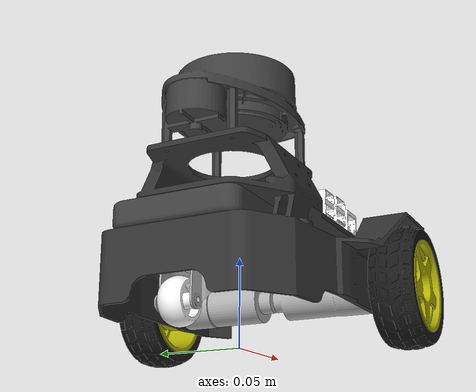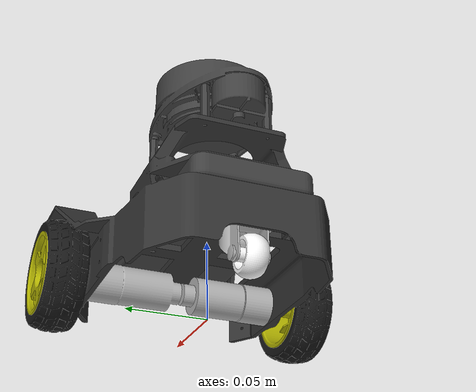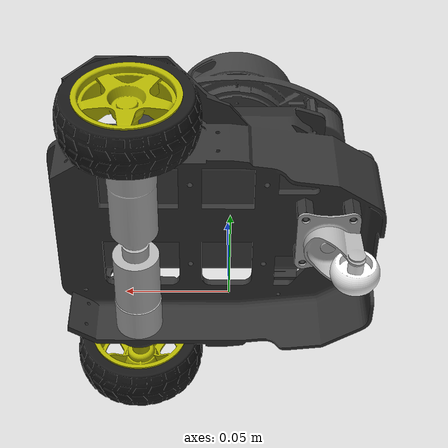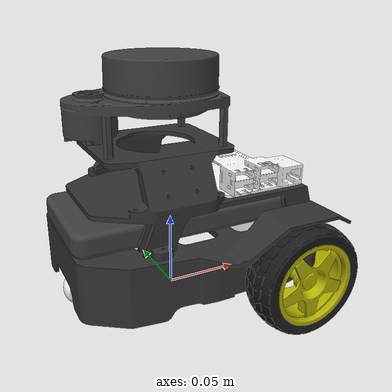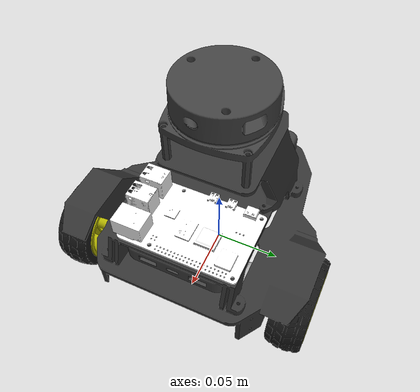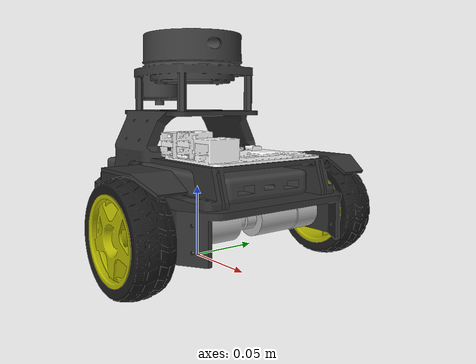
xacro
<?xml version="1.0" ?>
<robot name="gonzo" xmlns:xacro="http://www.ros.org/wiki/xacro">

<xacro:include filename="$(find gonzo_description)/urdf/materials.xacro" />
<xacro:include filename="$(find gonzo_description)/urdf/gonzo.trans" />
<xacro:include filename="$(find gonzo_description)/urdf/gonzo.gazebo" />

<link name="base_link">
</link>

<link name="chassis_link">
  <inertial>
    <origin xyz="0.004369403453275925 -7.02165131943858e-05 0.06024663017842304" rpy="0 0 0"/>
    <mass value="1.20273197769577378"/>
    <inertia ixx="0.00438" iyy="0.00482" izz="0.07051" ixy="0.0" iyz="-0.0" ixz="7e-06"/>
  </inertial>
  <visual>
    <origin xyz="0 0 -0.05" rpy="0 0 0"/>
    <geometry>
      <mesh filename="package://gonzo_description/meshes/base_link.stl" scale="0.001 0.001 0.001"/>
    </geometry>
    <material name="body_black"/>
  </visual>
  <collision>
    <origin xyz="0 0 -0.05" rpy="0 0 0"/>
    <geometry>
      <mesh filename="package://gonzo_description/meshes/base_link.stl" scale="0.001 0.001 0.001"/>
    </geometry>
  </collision>
</link>

<link name="right_tyre">
  <inertial>
    <origin xyz="-9.273384193181355e-08 -0.017748789854178187 -5.2862379126827896e-08" rpy="0 0 0"/>
    <mass value="0.109430614326368155"/>
    <inertia ixx="5e-05" iyy="9e-05" izz="5e-05" ixy="-0.0" iyz="-0.0" ixz="0.0"/>
  </inertial>
  <visual>
    <origin xyz="-0.0475 -0.0347 -0.067225" rpy="${-pi/2} 0 0"/>
    <geometry>
      <mesh filename="package://gonzo_description/meshes/right_tyre.stl" scale="0.001 0.001 0.001"/>
    </geometry>
    <material name="tyre_black"/>
  </visual>
  <collision>
    <origin xyz="0.0 0.0 0.013" rpy="0.0 0 0"/>
    <geometry>
      <cylinder radius="0.033" length="0.024"/>
    </geometry>
  </collision>
</link>

<link name="right_wheel">
  <inertial>
    <origin xyz="3.968741960069799e-09 -0.01469275991633777 -1.7434994024900785e-08" rpy="0 0 0"/>
    <mass value="0.112389434297757225"/>
    <inertia ixx="3e-04" iyy="5e-04" izz="3e-04" ixy="0.0" iyz="-0.0" ixz="-0.0"/>
  </inertial>
  <visual>
    <origin xyz="-0.0475 -0.0347 -0.067225" rpy="${-pi/2} 0 0"/>
    <geometry>
      <mesh filename="package://gonzo_description/meshes/right_wheel.stl" scale="0.001 0.001 0.001"/>
    </geometry>
    <material name="yellow"/>
  </visual>
  <collision>
    <origin xyz="-0.0475 -0.0347 -0.067225" rpy="${-pi/2} 0 0"/>
    <geometry>
      <mesh filename="package://gonzo_description/meshes/right_wheel.stl" scale="0.001 0.001 0.001"/>
    </geometry>
  </collision>
</link>

<link name="left_wheel">
  <inertial>
    <origin xyz="-7.785304803609172e-09 0.009692764310584537 6.360168114394327e-09" rpy="0 0 0"/>
    <mass value="0.112389434297757225"/>
    <inertia ixx="3e-04" iyy="5e-04" izz="3e-04" ixy="-0.0" iyz="0.0" ixz="-0.0"/>
  </inertial>
  <visual>
    <origin xyz="-0.0475 0.0347 -0.067225" rpy="${pi/2} 0 0"/>
    <geometry>
      <mesh filename="package://gonzo_description/meshes/left_wheel.stl" scale="0.001 0.001 0.001"/>
    </geometry>
    <material name="yellow"/>
  </visual>
  <collision>
    <origin xyz="-0.0475 0.0347 -0.067225" rpy="${pi/2} 0 0"/>
    <geometry>
      <mesh filename="package://gonzo_description/meshes/left_wheel.stl" scale="0.001 0.001 0.001"/>
    </geometry>
  </collision>
</link>

<link name="left_tyre">
  <inertial>
    <origin xyz="9.273384204283586e-08 0.017398360785967945 -5.286237849538855e-08" rpy="0 0 0"/>
    <mass value="0.109430614326368155"/>
    <inertia ixx="5e-05" iyy="9e-05" izz="5e-05" ixy="-0.0" iyz="0.0" ixz="-0.0"/>
  </inertial>
  <visual>
    <origin xyz="-0.0475 0.0347 -0.067225" rpy="${pi/2} 0 0"/>
    <geometry>
      <mesh filename="package://gonzo_description/meshes/left_tyre.stl" scale="0.001 0.001 0.001"/>
    </geometry>
    <material name="tyre_black"/>
  </visual>
  <collision>
    <origin xyz="0.0 0.0 0.013" rpy="0.0 0 0"/>
    <geometry>
      <cylinder radius="0.033" length="0.024"/>
    </geometry>
  </collision>
</link>

<link name="right_motor">
  <inertial>
    <origin xyz="4.7331206576989304e-07 0.0266233771435831 -1.3780643293159756e-14" rpy="0 0 0"/>
    <mass value="0.1696166275723882"/>
    <inertia ixx="2e-05" iyy="5e-06" izz="2e-05" ixy="0.0" iyz="-0.0" ixz="-0.0"/>
  </inertial>
  <visual>
    <origin xyz="-0.0475 0.0601 -0.0347" rpy="0 0 0"/>
    <geometry>
      <mesh filename="package://gonzo_description/meshes/right_motor.stl" scale="0.001 0.001 0.001"/>
    </geometry>
    <material name="silver"/>
  </visual>
  <collision>
    <origin xyz="-0.0475 0.0601 -0.0347" rpy="0 0 0"/>
    <geometry>
      <mesh filename="package://gonzo_description/meshes/right_motor.stl" scale="0.001 0.001 0.001"/>
    </geometry>
  </collision>
</link>

<link name="left_motor">
  <inertial>
    <origin xyz="4.7331206576295415e-07 -0.0266233771435831 1.3787582187063663e-14" rpy="0 0 0"/>
    <mass value="0.1696166275723882"/>
    <inertia ixx="2e-05" iyy="5e-06" izz="2e-05" ixy="-0.0" iyz="-0.0" ixz="0.0"/>
  </inertial>
  <visual>
    <origin xyz="-0.0475 -0.0599 -0.0347" rpy="0 0 0"/>
    <geometry>
      <mesh filename="package://gonzo_description/meshes/left_motor.stl" scale="0.001 0.001 0.001"/>
    </geometry>
    <material name="silver"/>
  </visual>
  <collision>
    <origin xyz="-0.0475 -0.0599 -0.0347" rpy="0 0 0"/>
    <geometry>
      <mesh filename="package://gonzo_description/meshes/left_motor.stl" scale="0.001 0.001 0.001"/>
    </geometry>
  </collision>
</link>

<link name="caster_wheel">
  <inertial>
    <origin xyz="-7.301104165691186e-14 0.01039999999999995 -4.344167282410022e-07" rpy="0 0 0"/>
    <mass value="0.084208687504738151"/>
    <inertia ixx="2e-6" iyy="2e-6" izz="2e-6" ixy="0.0" iyz="0.0" ixz="0.0"/>
  </inertial>
  <visual>
    <origin xyz="0.063 0.0 -0.013814" rpy="0 0 0"/>
    <geometry>
      <mesh filename="package://gonzo_description/meshes/caster_wheel.stl" scale="0.001 0.001 0.001"/>
    </geometry>
    <material name="white"/>
  </visual>
  <collision>
    <origin xyz="0.0 0.0 0.0" rpy="0 0 0"/>
    <geometry>
      <sphere radius="0.015"/>
    </geometry>
  </collision>
</link>

<link name="caster_holder">
  <inertial>
    <origin xyz="-0.004533693929697581 0.00038962873399884824 -0.00825449347985955" rpy="0 0 0"/>
    <mass value="0.020651902025180708"/>
    <inertia ixx="2e-06" iyy="2e-06" izz="3e-06" ixy="0.0" iyz="0.0" ixz="-1e-06"/>
  </inertial>
  <visual>
    <origin xyz="0.051 0.0001 -0.034814" rpy="0 0 0"/>
    <geometry>
      <mesh filename="package://gonzo_description/meshes/caster_holder.stl" scale="0.001 0.001 0.001"/>
    </geometry>
    <material name="silver"/>
  </visual>
  <collision>
    <origin xyz="0.051 0.0001 -0.034814" rpy="0 0 0"/>
    <geometry>
      <mesh filename="package://gonzo_description/meshes/caster_holder.stl" scale="0.001 0.001 0.001"/>
    </geometry>
  </collision>
</link>

<link name="caster_base">
  <inertial>
    <origin xyz="-3.863839803663893e-12 9.999999823247428e-05 -0.059707403308328987" rpy="0 0 0"/>
    <mass value="0.05385654757274695"/>
    <inertia ixx="1e-06" iyy="1e-06" izz="2e-06" ixy="0.0" iyz="-0.0" ixz="-0.0"/>
  </inertial>
  <visual>
    <origin xyz="0.051 0.0002 -0.0954" rpy="0 0 0"/>
    <geometry>
      <mesh filename="package://gonzo_description/meshes/caster_base.stl" scale="0.001 0.001 0.001"/>
    </geometry>
    <material name="silver"/>
  </visual>
  <collision>
    <origin xyz="0.051 0.0002 -0.0954" rpy="0 0 0"/>
    <geometry>
      <mesh filename="package://gonzo_description/meshes/caster_base.stl" scale="0.001 0.001 0.001"/>
    </geometry>
  </collision>
</link>

<link name="battery_link">
  <inertial>
    <origin xyz="0.05033140765960479 -1.9995749077599944e-07 0.011550017871800405" rpy="0 0 0"/>
    <mass value="0.17953621749161505"/>
    <inertia ixx="8.3e-05" iyy="0.000332" izz="0.000408" ixy="0.0" iyz="-0.0" ixz="-0.0"/>
  </inertial>
  <visual>
    <origin xyz="0.051 0.0001 -0.0477" rpy="0 0 0"/>
    <geometry>
      <mesh filename="package://gonzo_description/meshes/battery_link.stl" scale="0.001 0.001 0.001"/>
    </geometry>
    <material name="rplidar_black"/>
  </visual>
  <collision>
    <origin xyz="0.051 0.0001 -0.0477" rpy="0 0 0"/>
    <geometry>
      <mesh filename="package://gonzo_description/meshes/battery_link.stl" scale="0.001 0.001 0.001"/>
    </geometry>
  </collision>
</link>

<link name="raspberry">
  <inertial>
    <origin xyz="0.09956176838106731 -0.013714415462667086 0.03152151823198129" rpy="0 0 0"/>
    <mass value="0.03013771185217864"/>
    <inertia ixx="1.9e-05" iyy="8e-06" izz="2.6e-05" ixy="1e-06" iyz="2e-06" ixz="-0.0"/>
  </inertial>
  <visual>
    <origin xyz="0.051 0.0001 -0.0477" rpy="0 0 0"/>
    <geometry>
      <mesh filename="package://gonzo_description/meshes/raspberry.stl" scale="0.001 0.001 0.001"/>
    </geometry>
    <material name="white"/>
  </visual>
  <collision>
    <origin xyz="0.051 0.0001 -0.0477" rpy="0 0 0"/>
    <geometry>
      <mesh filename="package://gonzo_description/meshes/raspberry.stl" scale="0.001 0.001 0.001"/>
    </geometry>
  </collision>
</link>

<link name="laser">
  <inertial>
    <origin xyz="0.031039338840954937 0.0003525144946507812 0.08371566276734518" rpy="0 0 0"/>
    <mass value="0.35976986632824088"/>
    <inertia ixx="2.4e-05" iyy="5.3e-05" izz="6.2e-05" ixy="-1e-06" iyz="-0.0" ixz="-8e-06"/>
  </inertial>
  <visual>
    <origin xyz="0.005 0.0001 -0.15" rpy="0 0 0"/>
    <geometry>
      <mesh filename="package://gonzo_description/meshes/laser.dae" scale="0.001 0.001 0.001"/>
    </geometry>
    <material name="rplidar_black"/>
  </visual>
  <collision>
    <origin xyz="0.005 0.0001 -0.15" rpy="0 0 0"/>
    <geometry>
      <mesh filename="package://gonzo_description/meshes/laser.stl" scale="0.001 0.001 0.001"/>
    </geometry>
  </collision>
</link>

<joint name="chassis_joint" type="fixed">
  <origin xyz="0.0 0.0 0.05" rpy="0.0 0.0 0.0"/>
  <parent link="base_link"/>
  <child link="chassis_link"/>
</joint>

<joint name="right_tyre_joint" type="fixed">
  <origin xyz="0.0 0.0 0.0" rpy="0 0 0"/>
  <parent link="right_wheel"/>
  <child link="right_tyre"/>
</joint>

<joint name="right_wheel_joint" type="continuous">
  <origin xyz="0.0 -0.007125 0.0" rpy="${pi/2} 0 0"/>
  <parent link="right_motor"/>
  <child link="right_wheel"/>
  <axis xyz="0.0 0.0 -1.0"/>
</joint>

<joint name="left_wheel_joint" type="continuous">
  <origin xyz="0.0 0.007125 0.0" rpy="${-pi/2} 0 0"/>
  <parent link="left_motor"/>
  <child link="left_wheel"/>
  <axis xyz="0.0 0.0 1.0"/>
</joint>

<joint name="left_tyre_joint" type="fixed">
  <origin xyz="0.0 0.0 0.0" rpy="0 0 0"/>
  <parent link="left_wheel"/>
  <child link="left_tyre"/>
</joint>

<joint name="right_motor_joint" type="fixed">
  <origin xyz="0.0475 -0.06 0.0347" rpy="0 0 0"/>
  <parent link="base_link"/>
  <child link="right_motor"/>
</joint>

<joint name="left_motor_joint" type="fixed">
  <origin xyz="0.0475 0.06 0.0347" rpy="0 0 0"/>
  <parent link="base_link"/>
  <child link="left_motor"/>
</joint>

<joint name="caster_wheel_joint" type="fixed">
  <origin xyz="-0.012 -0.0 -0.021" rpy="0 0 0"/>
  <parent link="caster_holder"/>
  <child link="caster_wheel"/>
</joint>

<joint name="caster_holder_joint" type="fixed">
  <origin xyz="0.0 0.0001 -0.060586" rpy="0 0 0"/>
  <parent link="caster_base"/>
  <child link="caster_holder"/>
</joint>

<joint name="caster_base_joint" type="fixed">
  <origin xyz="-0.051 -0.0002 0.0954" rpy="0 0 0"/>
  <parent link="base_link"/>
  <child link="caster_base"/>
</joint>

<joint name="battery_joint" type="fixed">
  <origin xyz="-0.051 -0.0001 0.0477" rpy="0 0 0"/>
  <parent link="base_link"/>
  <child link="battery_link"/>
</joint>

<joint name="raspberrypi_joint" type="fixed">
  <origin xyz="-0.051 -0.0001 0.0477" rpy="0 0 0"/>
  <parent link="base_link"/>
  <child link="raspberry"/>
</joint>

<joint name="laser_joint" type="fixed">
  <origin xyz="-0.005 -0.0001 0.15" rpy="0 0 0"/>
  <parent link="base_link"/>
  <child link="laser"/>
</joint>

</robot>

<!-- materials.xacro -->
<robot name="gonzo" xmlns:xacro="http://www.ros.org/wiki/xacro" >

<material name="silver">
  <color rgba="0.700 0.700 0.700 1.000"/>
</material>

<material name="white">
  <color rgba="1.0 1.0 1.0 1.000"/>
</material>

<material name="yellow">
  <color rgba="0.700 0.700 0.00 1.000"/>
</material>

<material name="body_black">
  <color rgba="0.200 0.200 0.200 1.000"/>
</material>

<material name="tyre_black">
  <color rgba="0.100 0.100 0.100 1.000"/>
</material>

<material name="rplidar_black">
  <color rgba="0.250 0.250 0.250 1.000"/>
</material>

</robot>

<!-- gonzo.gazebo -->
<robot name="gonzo" xmlns:xacro="http://www.ros.org/wiki/xacro" >

  <xacro:property name="silver" value="Gazebo/Silver" />
  <xacro:property name="wheel_color" value="Gazebo/Yellow" />
  <xacro:property name="body_color" value="Gazebo/Black" />
  <xacro:property name="white" value="Gazebo/White" />

  <gazebo>
    <plugin name="gazebo_ros_control" filename="libgazebo_ros_control.so"/>
  </gazebo>

  <!-- LiDAR RAY -->

  <gazebo reference="laser">
      <sensor type="ray" name="head_hokuyo_sensor">
          <pose> 0 0 0 0 0 0 </pose>
          <visualize>false</visualize>
          <update_rate>5.5</update_rate>
          <ray>
              <scan>
                  <horizontal>
                      <samples>360</samples>
                      <resolution>1</resolution>
                      <min_angle>-${pi}</min_angle>
                      <max_angle>${pi}</max_angle>
                  </horizontal>
              </scan>
              <range>
                  <min>0.3</min>
                  <max>6</max> <!-- 6 realistically -->
              </range>
              <noise>
                  <type>gaussian</type>
                  <mean>0.0</mean>
                  <stddev>0.01</stddev>
              </noise>
          </ray>
          <plugin name="gazebo_ros_head_hokuyo_controller" filename="libgazebo_ros_laser.so">
              <topicName>/gonzo/sensors/lidar/scan</topicName>
              <frameName>laser</frameName>
          </plugin>
      </sensor>
  </gazebo>

  <!-- MATERIALS AND FRICTIONS -->
  <gazebo reference="chassis_link">
    <material>${body_color}</material>
    <mu1>0.1</mu1>
    <mu2>0.1</mu2>
    <selfCollide>false</selfCollide>
    <gravity>true</gravity>
  </gazebo>

  <gazebo reference="right_tyre">
    <material>${body_color}</material>
    <mu1>1.0</mu1>
    <mu2>1.0</mu2>
    <kp value="10000000.0"/>
    <kd value="1.0"/>
    <selfCollide>false</selfCollide>
  </gazebo>

  <gazebo reference="right_wheel">
    <material>${wheel_color}</material>
    <mu1>1.0</mu1>
    <mu2>1.0</mu2>
    <selfCollide>false</selfCollide>
  </gazebo>

  <gazebo reference="left_wheel">
    <material>${wheel_color}</material>
    <mu1>1.0</mu1>
    <mu2>1.0</mu2>
    <selfCollide>false</selfCollide>
  </gazebo>

  <gazebo reference="left_tyre">
    <material>${body_color}</material>
    <mu1>1.0</mu1>
    <mu2>1.0</mu2>
    <kp value="10000000.0"/>
    <kd value="1.0"/>
    <selfCollide>false</selfCollide>
  </gazebo>

  <gazebo reference="right_motor">
    <material>${silver}</material>
    <mu1>0.2</mu1>
    <mu2>0.2</mu2>
    <selfCollide>false</selfCollide>
  </gazebo>

  <gazebo reference="left_motor">
    <material>${silver}</material>
    <mu1>0.2</mu1>
    <mu2>0.2</mu2>
    <selfCollide>false</selfCollide>
  </gazebo>

  <gazebo reference="caster_wheel">
    <material>${white}</material>
    <mu1>0.0</mu1>
    <mu2>0.0</mu2>
    <selfCollide>false</selfCollide>
  </gazebo>

  <gazebo reference="caster_holder">
    <material>${silver}</material>
    <mu1>0.2</mu1>
    <mu2>0.2</mu2>
    <selfCollide>false</selfCollide>
  </gazebo>

  <gazebo reference="caster_base">
    <material>${silver}</material>
    <mu1>0.2</mu1>
    <mu2>0.2</mu2>
    <selfCollide>false</selfCollide>
  </gazebo>

  <gazebo reference="battery_link">
    <material>${body_color}</material>
    <mu1>0.2</mu1>
    <mu2>0.2</mu2>
    <selfCollide>false</selfCollide>
  </gazebo>

  <gazebo reference="raspberry">
    <material>${white}</material>
    <mu1>0.2</mu1>
    <mu2>0.2</mu2>
    <selfCollide>false</selfCollide>
  </gazebo>

  <gazebo reference="laser">
    <material>${silver}</material>
    <mu1>0.2</mu1>
    <mu2>0.2</mu2>
    <selfCollide>false</selfCollide>
  </gazebo>

</robot>
